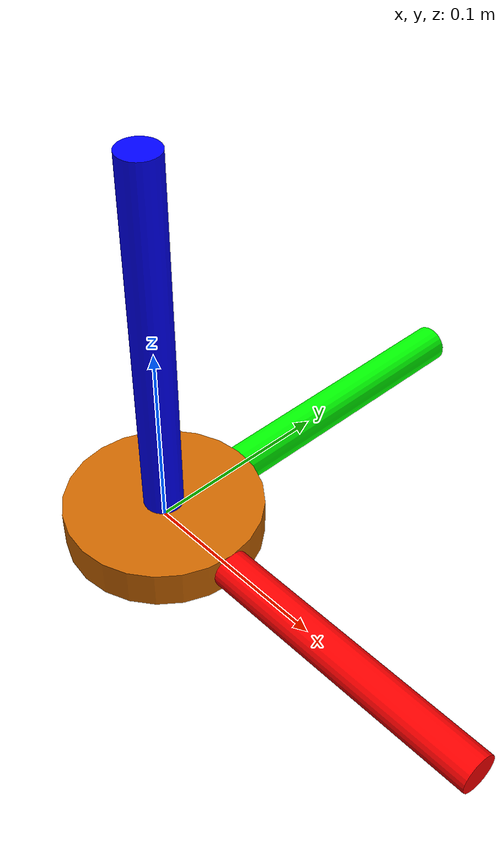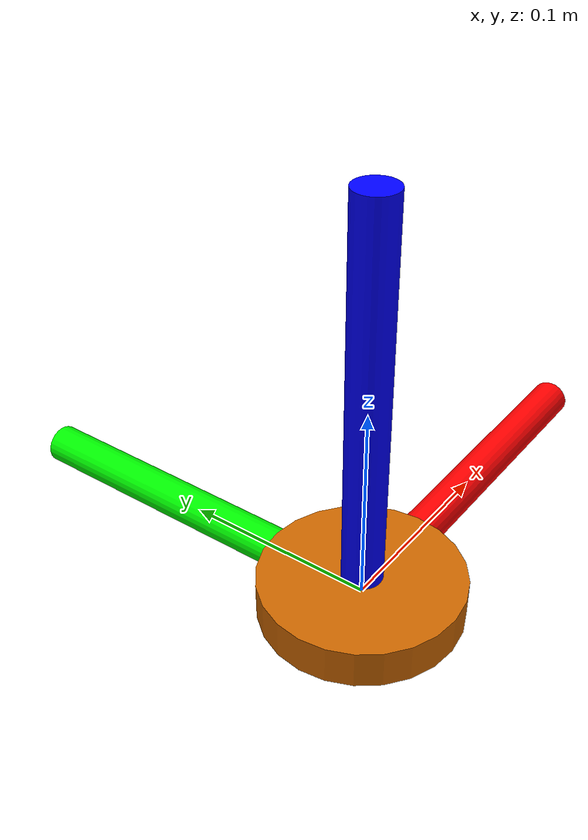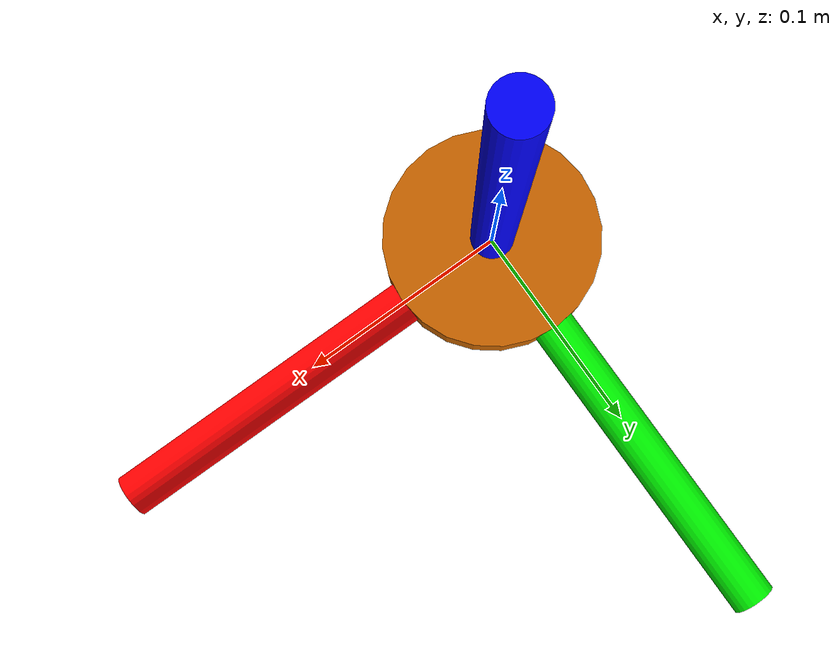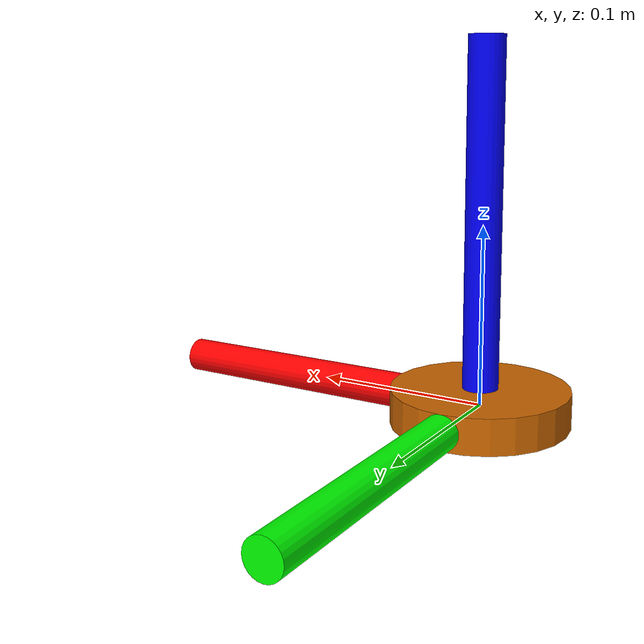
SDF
<?xml version="1.0"?>
<sdf version='1.7'>
  <model name="cube">
      <!-- Cube -->
      <link name="cube">
        <pose>0 0 0 0 0 0</pose>
        <inertial>
          <mass>0.05</mass>
          <inertia>
            <ixx>0.000033</ixx>
            <ixy>0</ixy>
            <ixz>0</ixz>
            <iyy>0.000033</iyy>
            <iyz>0</iyz>
            <izz>0.0000625</izz>
          </inertia>
        </inertial>

        <visual name="cube_visual">
          <geometry>
            <cylinder>
              <radius>0.05</radius>
              <length> 0.02 </length>
            </cylinder>
          </geometry>
          <material><diffuse>0.8 0.4 0.0 1</diffuse></material>
        </visual>
         <visual name="z_axis">
          <pose>0 0 0.1 0 0 0</pose> <!-- relative to cube frame -->
          <geometry>
            <cylinder>
              <radius>0.01</radius>
              <length>0.2</length>
            </cylinder>
          </geometry>
          <material>
            <ambient>0 0 1 1</ambient>
            <diffuse>0 0 1 1</diffuse>
          </material>
        </visual>

        <!-- Y-axis -->
        <visual name="x_axis">
          <pose>0.1 0 0 0 1.57079632679 0 </pose> <!-- rotate 90 deg around Z -->
          <geometry>
            <cylinder>
              <radius>0.01</radius>
              <length>0.2</length>
            </cylinder>
          </geometry>
          <material>
            <ambient>1 0 0 1</ambient>
            <diffuse>1 0 0 1</diffuse>
          </material>
        </visual>

        <!-- Z-axis -->
        <visual name="y_axis">
          <pose>0 0.1 0 1.57079632679 0 0</pose> <!-- rotate 90 deg around Y -->
          <geometry>
            <cylinder>
              <radius>0.01</radius>
              <length>0.2</length>
            </cylinder>
          </geometry>
          <material>
            <ambient>0 1 0 1</ambient>
            <diffuse>0 1 0 1</diffuse>
          </material>
        </visual>

         <collision name="cube">
          <pose>0 0 0 0 0 0</pose>
          <geometry>
            <cylinder>
              <radius>0.05</radius>
              <length> 0.02 </length>
            </cylinder>
          </geometry>
        <drake:proximity_properties>
          <drake:mu_static>0.5</drake:mu_static>
          <drake:mu_dynamic>0.5</drake:mu_dynamic>
        </drake:proximity_properties>

        </collision>
        <collision name="corner_1">
          <pose>0.05 0 0 0 0 0</pose>
          <geometry>
            <sphere>
              <radius>0.001 0.001 0.001</radius>
            </sphere>
          </geometry>
          <drake:proximity_properties>
            <drake:mu_static>0.5</drake:mu_static>
            <drake:mu_dynamic>0.5</drake:mu_dynamic>
          </drake:proximity_properties>
        </collision>
        <collision name="corner_2">
          <pose>-0.05 0 0 0 0 0</pose>
          <geometry>
            <sphere>
              <radius>0.001 0.001 0.001</radius>
            </sphere>
          </geometry>
          <drake:proximity_properties>
            <drake:mu_static>0.5</drake:mu_static>
            <drake:mu_dynamic>0.5</drake:mu_dynamic>
          </drake:proximity_properties>
        </collision>
        <collision name="corner_3">
          <pose>0 0.05 0 0 0 0</pose>
          <geometry>
            <sphere>
              <radius>0.001 0.001 0.001</radius>
            </sphere>
          </geometry>
          <drake:proximity_properties>
            <drake:mu_static>0.5</drake:mu_static>
            <drake:mu_dynamic>0.5</drake:mu_dynamic>
          </drake:proximity_properties>
        </collision>
        <collision name="corner_4">
          <pose>0 -0.05 0 0 0 0</pose>
          <geometry>
            <sphere>
              <radius>0.001 0.001 0.001</radius>
            </sphere>
          </geometry>
          <drake:proximity_properties>
            <drake:mu_static>0.5</drake:mu_static>
            <drake:mu_dynamic>0.5</drake:mu_dynamic>
          </drake:proximity_properties>
        </collision>
        <collision name="corner_5">
          <pose>0.03535 -0.03535 0 0 0 0</pose>
          <geometry>
            <sphere>
              <radius>0.001 0.001 0.001</radius>
            </sphere>
          </geometry>
          <drake:proximity_properties>
            <drake:mu_static>0.5</drake:mu_static>
            <drake:mu_dynamic>0.5</drake:mu_dynamic>
          </drake:proximity_properties>
        </collision>
        <collision name="corner_6">
          <pose>-0.03535 -0.03535 0 0 0 0</pose>
          <geometry>
            <sphere>
              <radius>0.001 0.001 0.001</radius>
            </sphere>
          </geometry>
          <drake:proximity_properties>
            <drake:mu_static>0.5</drake:mu_static>
            <drake:mu_dynamic>0.5</drake:mu_dynamic>
          </drake:proximity_properties>
        </collision>
        <collision name="corner_7">
          <pose>-0.03535 0.03535 0 0 0 0</pose>
          <geometry>
            <sphere>
              <radius>0.001 0.001 0.001</radius>
            </sphere>
          </geometry>
          <drake:proximity_properties>
            <drake:mu_static>0.5</drake:mu_static>
            <drake:mu_dynamic>0.5</drake:mu_dynamic>
          </drake:proximity_properties>
        </collision>
        <collision name="corner_8">
          <pose>0.03535 0.03535 0 0 0 0</pose>
          <geometry>
            <sphere>
              <radius>0.001 0.001 0.001</radius>
            </sphere>
          </geometry>
          <drake:proximity_properties>
            <drake:mu_static>0.5</drake:mu_static>
            <drake:mu_dynamic>0.5</drake:mu_dynamic>
          </drake:proximity_properties>
        </collision>

      </link>
    </model>
</sdf>
